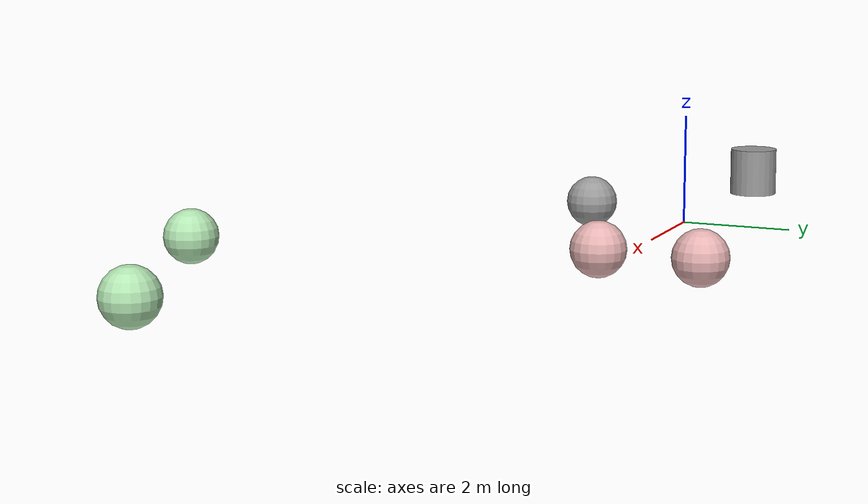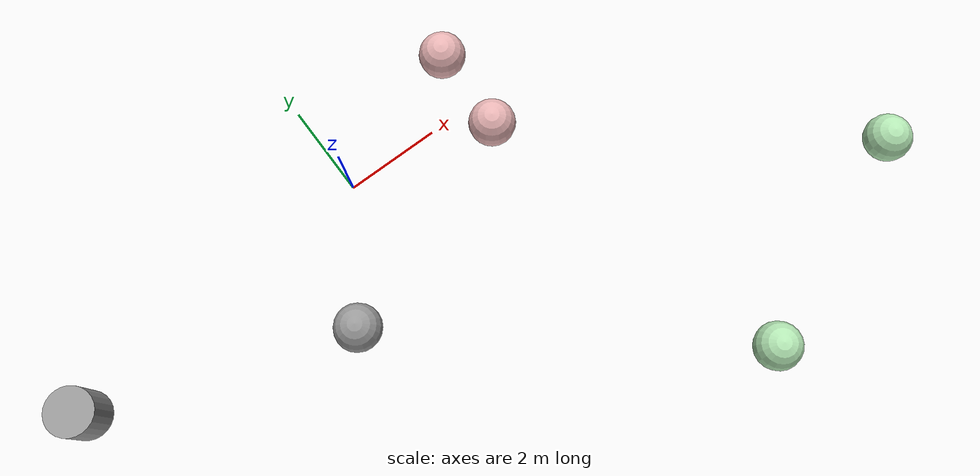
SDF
<?xml version='1.0'?>
<sdf version='1.6'>
  <model name='red_ball'>
    <link name='link_4'>
      <pose frame=''>3.13732 -0.582981 0 0 -0 0</pose>
      <inertial>
        <mass>1</mass>
        <inertia>
          <ixx>0.1</ixx>
          <ixy>0</ixy>
          <ixz>0</ixz>
          <iyy>0.1</iyy>
          <iyz>0</iyz>
          <izz>0.1</izz>
        </inertia>
        <pose frame=''>0 0 0 0 -0 0</pose>
      </inertial>
      <gravity>1</gravity>
      <self_collide>0</self_collide>
      <kinematic>0</kinematic>
      <visual name='visual'>
        <pose frame=''>0 0 0 0 -0 0</pose>
        <geometry>
          <sphere>
            <radius>0.5</radius>
          </sphere>
        </geometry>
        <material>
          <lighting>1</lighting>
          <script>
            <uri>file://media/materials/scripts/gazebo.material</uri>
            <name>Gazebo/Grey</name>
          </script>
          <shader type='pixel'>
            <normal_map>__default__</normal_map>
          </shader>
          <ambient>0.9 0.3 0.3 1</ambient>
          <diffuse>0.9 0.7 0.7 1</diffuse>
          <specular>0.9 0.01 0.01 1</specular>
          <emissive>0.9 0 0 1</emissive>
        </material>
        <transparency>0</transparency>
        <cast_shadows>1</cast_shadows>
      </visual>
      <collision name='collision'>
        <laser_retro>0</laser_retro>
        <max_contacts>10</max_contacts>
        <pose frame=''>0 0 0 0 -0 0</pose>
        <geometry>
          <sphere>
            <radius>0.5</radius>
          </sphere>
        </geometry>
        <surface>
          <friction>
            <ode>
              <mu>1</mu>
              <mu2>1</mu2>
              <fdir1>0 0 0</fdir1>
              <slip1>0</slip1>
              <slip2>0</slip2>
            </ode>
            <torsional>
              <coefficient>1</coefficient>
              <patch_radius>0</patch_radius>
              <surface_radius>0</surface_radius>
              <use_patch_radius>1</use_patch_radius>
              <ode>
                <slip>0</slip>
              </ode>
            </torsional>
          </friction>
          <bounce>
            <restitution_coefficient>0</restitution_coefficient>
            <threshold>1e+06</threshold>
          </bounce>
          <contact>
            <collide_without_contact>0</collide_without_contact>
            <collide_without_contact_bitmask>1</collide_without_contact_bitmask>
            <collide_bitmask>1</collide_bitmask>
            <ode>
              <soft_cfm>0</soft_cfm>
              <soft_erp>0.2</soft_erp>
              <kp>1e+13</kp>
              <kd>1</kd>
              <max_vel>0.01</max_vel>
              <min_depth>0</min_depth>
            </ode>
            <bullet>
              <split_impulse>1</split_impulse>
              <split_impulse_penetration_threshold>-0.01</split_impulse_penetration_threshold>
              <soft_cfm>0</soft_cfm>
              <soft_erp>0.2</soft_erp>
              <kp>1e+13</kp>
              <kd>1</kd>
            </bullet>
          </contact>
        </surface>
      </collision>
    </link>
    <link name='link_4_clone'>
      <pose frame=''>3.20747 1.27399 0 0 -0 0</pose>
      <inertial>
        <mass>1</mass>
        <inertia>
          <ixx>0.1</ixx>
          <ixy>0</ixy>
          <ixz>0</ixz>
          <iyy>0.1</iyy>
          <iyz>0</iyz>
          <izz>0.1</izz>
        </inertia>
        <pose frame=''>0 0 0 0 -0 0</pose>
      </inertial>
      <self_collide>0</self_collide>
      <kinematic>0</kinematic>
      <gravity>1</gravity>
      <visual name='visual'>
        <pose frame=''>0 0 0 0 -0 0</pose>
        <geometry>
          <sphere>
            <radius>0.5</radius>
          </sphere>
        </geometry>
        <material>
          <lighting>1</lighting>
          <script>
            <uri>file://media/materials/scripts/gazebo.material</uri>
            <name>Gazebo/Grey</name>
          </script>
          <shader type='pixel'>
            <normal_map>__default__</normal_map>
          </shader>
          <ambient>0.9 0.3 0.3 1</ambient>
          <diffuse>0.9 0.7 0.7 1</diffuse>
          <specular>0.9 0.01 0.01 1</specular>
          <emissive>0.9 0 0 1</emissive>
        </material>
        <transparency>0</transparency>
        <cast_shadows>1</cast_shadows>
      </visual>
      <collision name='collision'>
        <laser_retro>0</laser_retro>
        <max_contacts>10</max_contacts>
        <pose frame=''>0 0 0 0 -0 0</pose>
        <geometry>
          <sphere>
            <radius>0.5</radius>
          </sphere>
        </geometry>
        <surface>
          <friction>
            <ode>
              <mu>1</mu>
              <mu2>1</mu2>
              <fdir1>0 0 0</fdir1>
              <slip1>0</slip1>
              <slip2>0</slip2>
            </ode>
            <torsional>
              <coefficient>1</coefficient>
              <patch_radius>0</patch_radius>
              <surface_radius>0</surface_radius>
              <use_patch_radius>1</use_patch_radius>
              <ode>
                <slip>0</slip>
              </ode>
            </torsional>
          </friction>
          <bounce>
            <restitution_coefficient>0</restitution_coefficient>
            <threshold>1e+06</threshold>
          </bounce>
          <contact>
            <collide_without_contact>0</collide_without_contact>
            <collide_without_contact_bitmask>1</collide_without_contact_bitmask>
            <collide_bitmask>1</collide_bitmask>
            <ode>
              <soft_cfm>0</soft_cfm>
              <soft_erp>0.2</soft_erp>
              <kp>1e+13</kp>
              <kd>1</kd>
              <max_vel>0.01</max_vel>
              <min_depth>0</min_depth>
            </ode>
            <bullet>
              <split_impulse>1</split_impulse>
              <split_impulse_penetration_threshold>-0.01</split_impulse_penetration_threshold>
              <soft_cfm>0</soft_cfm>
              <soft_erp>0.2</soft_erp>
              <kp>1e+13</kp>
              <kd>1</kd>
            </bullet>
          </contact>
        </surface>
      </collision>
    </link>
    <link name='link_5'>
      <pose frame=''>9.50677 -5.83209 0 0 -0 0</pose>
      <inertial>
        <mass>1</mass>
        <inertia>
          <ixx>0.1</ixx>
          <ixy>0</ixy>
          <ixz>0</ixz>
          <iyy>0.1</iyy>
          <iyz>0</iyz>
          <izz>0.1</izz>
        </inertia>
        <pose frame=''>0 0 0 0 -0 0</pose>
      </inertial>
      <gravity>1</gravity>
      <self_collide>0</self_collide>
      <kinematic>0</kinematic>
      <visual name='visual'>
        <pose frame=''>0 0 0 0 -0 0</pose>
        <geometry>
          <sphere>
            <radius>0.5</radius>
          </sphere>
        </geometry>
        <material>
          <lighting>1</lighting>
          <script>
            <uri>file://media/materials/scripts/gazebo.material</uri>
            <name>Gazebo/Grey</name>
          </script>
          <shader type='pixel'>
            <normal_map>__default__</normal_map>
          </shader>
          <ambient>0.3 0.9 0.3 1</ambient>
          <diffuse>0.7 0.9 0.7 1</diffuse>
          <specular>0.01 0.9 0.01 1</specular>
          <emissive>0 0.9 0 1</emissive>
        </material>
        <transparency>0</transparency>
        <cast_shadows>1</cast_shadows>
      </visual>
      <collision name='collision'>
        <laser_retro>0</laser_retro>
        <max_contacts>10</max_contacts>
        <pose frame=''>0 0 0 0 -0 0</pose>
        <geometry>
          <sphere>
            <radius>0.5</radius>
          </sphere>
        </geometry>
        <surface>
          <friction>
            <ode>
              <mu>1</mu>
              <mu2>1</mu2>
              <fdir1>0 0 0</fdir1>
              <slip1>0</slip1>
              <slip2>0</slip2>
            </ode>
            <torsional>
              <coefficient>1</coefficient>
              <patch_radius>0</patch_radius>
              <surface_radius>0</surface_radius>
              <use_patch_radius>1</use_patch_radius>
              <ode>
                <slip>0</slip>
              </ode>
            </torsional>
          </friction>
          <bounce>
            <restitution_coefficient>0</restitution_coefficient>
            <threshold>1e+06</threshold>
          </bounce>
          <contact>
            <collide_without_contact>0</collide_without_contact>
            <collide_without_contact_bitmask>1</collide_without_contact_bitmask>
            <collide_bitmask>1</collide_bitmask>
            <ode>
              <soft_cfm>0</soft_cfm>
              <soft_erp>0.2</soft_erp>
              <kp>1e+13</kp>
              <kd>1</kd>
              <max_vel>0.01</max_vel>
              <min_depth>0</min_depth>
            </ode>
            <bullet>
              <split_impulse>1</split_impulse>
              <split_impulse_penetration_threshold>-0.01</split_impulse_penetration_threshold>
              <soft_cfm>0</soft_cfm>
              <soft_erp>0.2</soft_erp>
              <kp>1e+13</kp>
              <kd>1</kd>
            </bullet>
          </contact>
        </surface>
      </collision>
    </link>
    <link name='link_5_clone'>
      <pose frame=''>4.81916 -7.74185 0 0 -0 0</pose>
      <inertial>
        <mass>1</mass>
        <inertia>
          <ixx>0.1</ixx>
          <ixy>0</ixy>
          <ixz>0</ixz>
          <iyy>0.1</iyy>
          <iyz>0</iyz>
          <izz>0.1</izz>
        </inertia>
        <pose frame=''>0 0 0 0 -0 0</pose>
      </inertial>
      <self_collide>0</self_collide>
      <kinematic>0</kinematic>
      <visual name='visual'>
        <pose frame=''>0 0 0 0 -0 0</pose>
        <geometry>
          <sphere>
            <radius>0.5</radius>
          </sphere>
        </geometry>
        <material>
          <lighting>1</lighting>
          <script>
            <uri>file://media/materials/scripts/gazebo.material</uri>
            <name>Gazebo/Grey</name>
          </script>
          <shader type='pixel'>
            <normal_map>__default__</normal_map>
          </shader>
          <ambient>0.3 0.9 0.3 1</ambient>
          <diffuse>0.7 0.9 0.7 1</diffuse>
          <specular>0.01 0.9 0.01 1</specular>
          <emissive>0 0.9 0 1</emissive>
        </material>
        <transparency>0</transparency>
        <cast_shadows>1</cast_shadows>
      </visual>
      <collision name='collision'>
        <laser_retro>0</laser_retro>
        <max_contacts>10</max_contacts>
        <pose frame=''>0 0 0 0 -0 0</pose>
        <geometry>
          <sphere>
            <radius>0.5</radius>
          </sphere>
        </geometry>
        <surface>
          <friction>
            <ode>
              <mu>1</mu>
              <mu2>1</mu2>
              <fdir1>0 0 0</fdir1>
              <slip1>0</slip1>
              <slip2>0</slip2>
            </ode>
            <torsional>
              <coefficient>1</coefficient>
              <patch_radius>0</patch_radius>
              <surface_radius>0</surface_radius>
              <use_patch_radius>1</use_patch_radius>
              <ode>
                <slip>0</slip>
              </ode>
            </torsional>
          </friction>
          <bounce>
            <restitution_coefficient>0</restitution_coefficient>
            <threshold>1e+06</threshold>
          </bounce>
          <contact>
            <collide_without_contact>0</collide_without_contact>
            <collide_without_contact_bitmask>1</collide_without_contact_bitmask>
            <collide_bitmask>1</collide_bitmask>
            <ode>
              <soft_cfm>0</soft_cfm>
              <soft_erp>0.2</soft_erp>
              <kp>1e+13</kp>
              <kd>1</kd>
              <max_vel>0.01</max_vel>
              <min_depth>0</min_depth>
            </ode>
            <bullet>
              <split_impulse>1</split_impulse>
              <split_impulse_penetration_threshold>-0.01</split_impulse_penetration_threshold>
              <soft_cfm>0</soft_cfm>
              <soft_erp>0.2</soft_erp>
              <kp>1e+13</kp>
              <kd>1</kd>
            </bullet>
          </contact>
        </surface>
      </collision>
    </link>
    <link name='link_6'>
      <pose frame=''>-1.59541 -2.42358 0 0 -0 0</pose>
      <inertial>
        <mass>1</mass>
        <inertia>
          <ixx>0.1</ixx>
          <ixy>0</ixy>
          <ixz>0</ixz>
          <iyy>0.1</iyy>
          <iyz>0</iyz>
          <izz>0.1</izz>
        </inertia>
      </inertial>
      <visual name='visual'>
        <pose frame=''>0 0 0 0 -0 0</pose>
        <geometry>
          <sphere>
            <radius>0.5</radius>
          </sphere>
        </geometry>
        <material>
          <lighting>1</lighting>
          <script>
            <uri>file://media/materials/scripts/gazebo.material</uri>
            <name>Gazebo/Grey</name>
          </script>
          <shader type='pixel'/>
          <ambient>0.3 0.3 0.3 1</ambient>
          <diffuse>0.7 0.7 0.7 1</diffuse>
          <specular>0.01 0.01 0.01 1</specular>
          <emissive>0 0 0 1</emissive>
        </material>
        <transparency>0</transparency>
        <cast_shadows>1</cast_shadows>
      </visual>
      <collision name='collision'>
        <laser_retro>0</laser_retro>
        <max_contacts>10</max_contacts>
        <pose frame=''>0 0 0 0 -0 0</pose>
        <geometry>
          <sphere>
            <radius>0.5</radius>
          </sphere>
        </geometry>
        <surface>
          <friction>
            <ode>
              <mu>1</mu>
              <mu2>1</mu2>
              <fdir1>0 0 0</fdir1>
              <slip1>0</slip1>
              <slip2>0</slip2>
            </ode>
            <torsional>
              <coefficient>1</coefficient>
              <patch_radius>0</patch_radius>
              <surface_radius>0</surface_radius>
              <use_patch_radius>1</use_patch_radius>
              <ode>
                <slip>0</slip>
              </ode>
            </torsional>
          </friction>
          <bounce>
            <restitution_coefficient>0</restitution_coefficient>
            <threshold>1e+06</threshold>
          </bounce>
          <contact>
            <collide_without_contact>0</collide_without_contact>
            <collide_without_contact_bitmask>1</collide_without_contact_bitmask>
            <collide_bitmask>1</collide_bitmask>
            <ode>
              <soft_cfm>0</soft_cfm>
              <soft_erp>0.2</soft_erp>
              <kp>1e+13</kp>
              <kd>1</kd>
              <max_vel>0.01</max_vel>
              <min_depth>0</min_depth>
            </ode>
            <bullet>
              <split_impulse>1</split_impulse>
              <split_impulse_penetration_threshold>-0.01</split_impulse_penetration_threshold>
              <soft_cfm>0</soft_cfm>
              <soft_erp>0.2</soft_erp>
              <kp>1e+13</kp>
              <kd>1</kd>
            </bullet>
          </contact>
        </surface>
      </collision>
    </link>
    <link name='link_7'>
      <pose frame=''>-6.89314 -0.520011 0 0 -0 0</pose>
      <inertial>
        <mass>1</mass>
        <inertia>
          <ixx>0.145833</ixx>
          <ixy>0</ixy>
          <ixz>0</ixz>
          <iyy>0.145833</iyy>
          <iyz>0</iyz>
          <izz>0.125</izz>
        </inertia>
      </inertial>
      <visual name='visual'>
        <pose frame=''>0 0 0 0 -0 0</pose>
        <geometry>
          <cylinder>
            <radius>0.5</radius>
            <length>1</length>
          </cylinder>
        </geometry>
        <material>
          <lighting>1</lighting>
          <script>
            <uri>file://media/materials/scripts/gazebo.material</uri>
            <name>Gazebo/Grey</name>
          </script>
          <shader type='pixel'/>
          <ambient>0.3 0.3 0.3 1</ambient>
          <diffuse>0.7 0.7 0.7 1</diffuse>
          <specular>0.01 0.01 0.01 1</specular>
          <emissive>0 0 0 1</emissive>
        </material>
        <transparency>0</transparency>
        <cast_shadows>1</cast_shadows>
      </visual>
      <collision name='collision'>
        <laser_retro>0</laser_retro>
        <max_contacts>10</max_contacts>
        <pose frame=''>0 0 0 0 -0 0</pose>
        <geometry>
          <cylinder>
            <radius>0.5</radius>
            <length>1</length>
          </cylinder>
        </geometry>
        <surface>
          <friction>
            <ode>
              <mu>1</mu>
              <mu2>1</mu2>
              <fdir1>0 0 0</fdir1>
              <slip1>0</slip1>
              <slip2>0</slip2>
            </ode>
            <torsional>
              <coefficient>1</coefficient>
              <patch_radius>0</patch_radius>
              <surface_radius>0</surface_radius>
              <use_patch_radius>1</use_patch_radius>
              <ode>
                <slip>0</slip>
              </ode>
            </torsional>
          </friction>
          <bounce>
            <restitution_coefficient>0</restitution_coefficient>
            <threshold>1e+06</threshold>
          </bounce>
          <contact>
            <collide_without_contact>0</collide_without_contact>
            <collide_without_contact_bitmask>1</collide_without_contact_bitmask>
            <collide_bitmask>1</collide_bitmask>
            <ode>
              <soft_cfm>0</soft_cfm>
              <soft_erp>0.2</soft_erp>
              <kp>1e+13</kp>
              <kd>1</kd>
              <max_vel>0.01</max_vel>
              <min_depth>0</min_depth>
            </ode>
            <bullet>
              <split_impulse>1</split_impulse>
              <split_impulse_penetration_threshold>-0.01</split_impulse_penetration_threshold>
              <soft_cfm>0</soft_cfm>
              <soft_erp>0.2</soft_erp>
              <kp>1e+13</kp>
              <kd>1</kd>
            </bullet>
          </contact>
        </surface>
      </collision>
    </link>
    <static>0</static>
    <allow_auto_disable>1</allow_auto_disable>
  </model>
</sdf>
